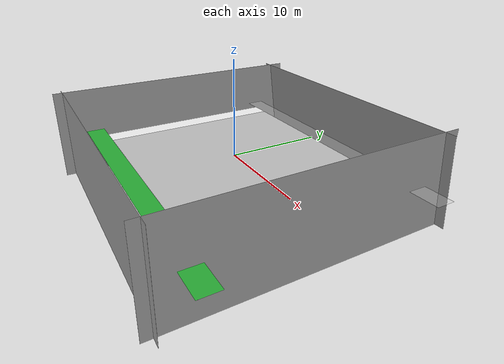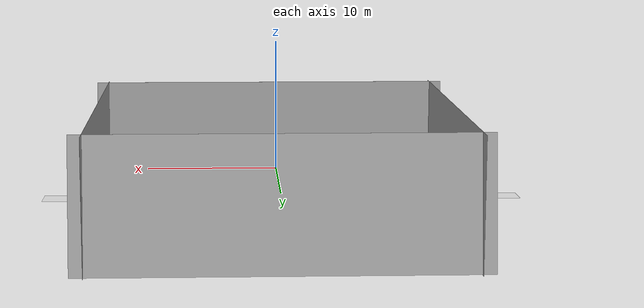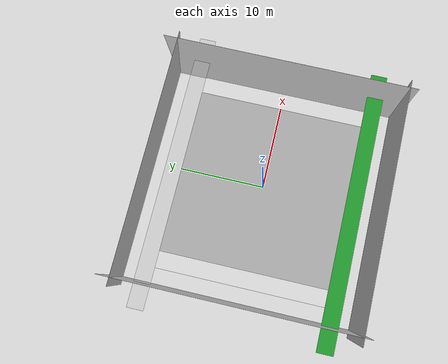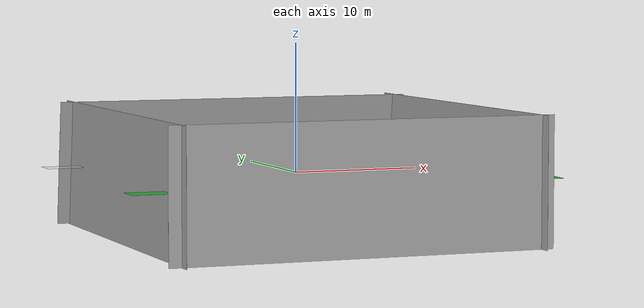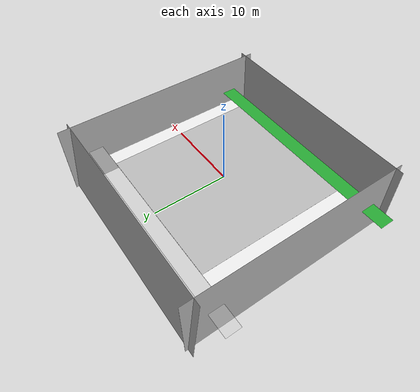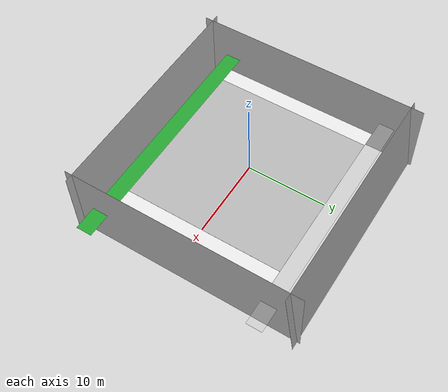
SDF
<?xml version="1.0" ?>
<sdf version="1.4">
  <model name="IARC 3D Simulation arena">
    <static>true</static>

    <link name="field">
      <pose>0 0 0.01 0 0 0</pose>
      <collision name="collision">
        <geometry>
          <plane>
            <normal>0 0 1</normal>
            <size>20.0 20.0</size>
          </plane>
        </geometry>
        <surface>
          <friction>
            <ode>
              <mu>100</mu>
              <mu2>50</mu2>
            </ode>
          </friction>
        </surface>
      </collision>

      <visual name="base1">
        <pose>0 11 0.001 0 0 0</pose>
        <cast_shadows>false</cast_shadows>
        <geometry>
          <plane>
            <normal>0 0 1</normal>
            <size>34.0 2.0</size>
          </plane>
        </geometry>
        <material>
          <script>
            <uri>model://iarc_px4_gazebo/models/iarc_with_walls/materials/scripts/</uri>
            <uri>model://iarc_px4_gazebo/models/iarc_with_walls/materials/textures/</uri>
            <name>IARC/FieldBorder</name>
          </script>
        </material>
      </visual>

      <visual name="base2">
        <pose>0 -11 0.001 0 0 0</pose>
        <cast_shadows>false</cast_shadows>
        <geometry>
          <plane>
            <normal>0 0 1</normal>
            <size>34.0 2.0</size>
          </plane>
        </geometry>
        <material>
          <script>
            <uri>model://iarc_px4_gazebo/models/iarc_with_walls/materials/scripts/</uri>
            <uri>model://iarc_px4_gazebo/models/iarc_with_walls/materials/textures/</uri>
            <name>IARC/FieldBorderGreen</name>
          </script>
        </material>
      </visual>

      <visual name="base3">
        <pose>11 0 0.001 0 0 0</pose>
        <cast_shadows>false</cast_shadows>
        <geometry>
          <plane>
            <normal>0 0 1</normal>
            <size>2.0 20.0</size>
          </plane>
        </geometry>
        <material>
          <script>
            <uri>model://iarc_px4_gazebo/models/iarc_with_walls/materials/scripts/</uri>
            <uri>model://iarc_px4_gazebo/models/iarc_with_walls/materials/textures/</uri>
            <name>IARC/FieldBorderWhite</name>
          </script>
        </material>
      </visual>

      <visual name="base4">
        <pose>-11 0 0.001 0 0 0</pose>
        <cast_shadows>false</cast_shadows>
        <geometry>
          <plane>
            <normal>0 0 1</normal>
            <size>2.0 20.0</size>
          </plane>
        </geometry>
        <material>
          <script>
            <uri>model://iarc_px4_gazebo/models/iarc_with_walls/materials/scripts/</uri>
            <uri>model://iarc_px4_gazebo/models/iarc_with_walls/materials/textures/</uri>
            <name>IARC/FieldBorderWhite</name>
          </script>
        </material>
      </visual>

      <visual name="carpet">
        <cast_shadows>false</cast_shadows>
        <geometry>
          <plane>
            <normal>0 0 1</normal>
            <size>20.0 20.0</size>
          </plane>
        </geometry>
        <material>
          <script>
            <uri>model://iarc_px4_gazebo/models/iarc_with_walls/materials/scripts/</uri>
            <uri>model://iarc_px4_gazebo/models/iarc_with_walls/materials/textures/</uri>
            <name>IARC/Ground</name>
          </script>
        </material>
      </visual>

      <visual name="wall1">
        <pose>0 14 0.001 1.7 0 0</pose>
        <cast_shadows>false</cast_shadows>
        <geometry>
          <plane>
            <normal>0 0 1</normal>
            <size>30.0 10.0</size>
          </plane>
        </geometry>
        <material>
          <script>
            <uri>model://iarc_px4_gazebo/models/iarc_with_walls/materials/scripts/</uri>
            <uri>model://iarc_px4_gazebo/models/iarc_with_walls/materials/textures/</uri>
            <name>IARC/FieldWall</name>
          </script>
        </material>
      </visual>

      <visual name="wall2">
        <pose>0 -14 0.001 1.57 0 3.14</pose>
        <cast_shadows>false</cast_shadows>
        <geometry>
          <plane>
            <normal>0 0 1</normal>
            <size>30.0 10.0</size>
          </plane>
        </geometry>
        <material>
          <script>
            <uri>model://iarc_px4_gazebo/models/iarc_with_walls/materials/scripts/</uri>
            <uri>model://iarc_px4_gazebo/models/iarc_with_walls/materials/textures/</uri>
            <name>IARC/FieldWall</name>
          </script>
        </material>
      </visual>

      <visual name="wall3">
        <pose>14 0 0.001 1.57 0 -1.57</pose>
        <cast_shadows>false</cast_shadows>
        <geometry>
          <plane>
            <normal>0 0 1</normal>
            <size>30.0 10.0</size>
          </plane>
        </geometry>
        <material>
          <script>
            <uri>model://iarc_px4_gazebo/models/iarc_with_walls/materials/scripts/</uri>
            <uri>model://iarc_px4_gazebo/models/iarc_with_walls/materials/textures/</uri>
            <name>IARC/FieldWall</name>
          </script>
        </material>
      </visual>

      <visual name="wall4">
        <pose>-14 0 0.001 1.57 0 1.57</pose>
        <cast_shadows>false</cast_shadows>
        <geometry>
          <plane>
            <normal>0 0 1</normal>
            <size>30.0 10.0</size>
          </plane>
        </geometry>
        <material>
          <script>
            <uri>model://iarc_px4_gazebo/models/iarc_with_walls/materials/scripts/</uri>
            <uri>model://iarc_px4_gazebo/models/iarc_with_walls/materials/textures/</uri>
            <name>IARC/FieldWall</name>
          </script>
        </material>
      </visual>

    </link>
  </model>
</sdf>
